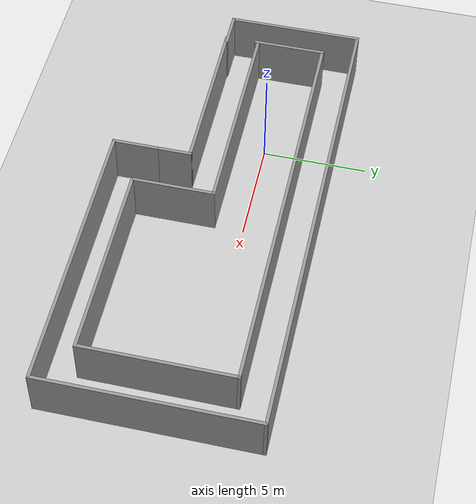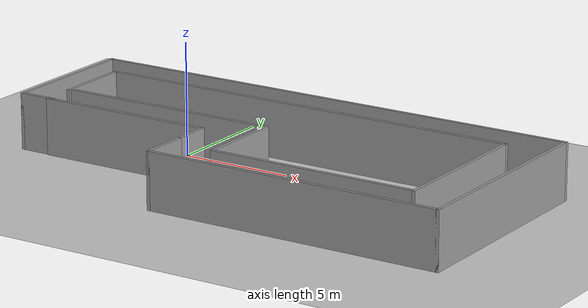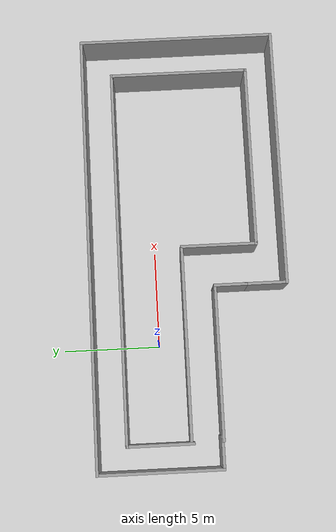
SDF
<?xml version="1.0" ?>
<sdf version="1.5">
  <world name="default">
    <!-- A global light source -->
    <include>
      <uri>model://sun</uri>
    </include>
    <!-- A ground plane -->
    <include>
      <uri>model://ground_plane</uri>
    </include>

<physics name='default_physics' default='0' type='ode'>
      <max_step_size>0.001</max_step_size>
      <real_time_factor>1</real_time_factor>
      <real_time_update_rate>1000</real_time_update_rate>
    </physics>

    <model name='corridor_world'>
    <pose frame=''>4.91551 -1.66993 0 0 -0 0</pose>
    <link name='Wall_0'>
      <collision name='Wall_0_Collision'>
        <geometry>
          <box>
            <size>10 0.15 2.5</size>
          </box>
        </geometry>
        <pose frame=''>0 0 1.25 0 -0 0</pose>
      </collision>
      <visual name='Wall_0_Visual'>
        <pose frame=''>0 0 1.25 0 -0 0</pose>
        <geometry>
          <box>
            <size>10 0.15 2.5</size>
          </box>
        </geometry>
        <material>
          <script>
            <uri>file://media/materials/scripts/gazebo.material</uri>
            <name>Gazebo/Grey</name>
          </script>
          <ambient>1 1 1 1</ambient>
        </material>
        <meta>
          <layer>0</layer>
        </meta>
      </visual>
      <pose frame=''>-4.89051 0.259932 0 0 -0 0</pose>
    </link>
    <link name='Wall_10'>
      <collision name='Wall_10_Collision'>
        <geometry>
          <box>
            <size>1.75 0.15 2.5</size>
          </box>
        </geometry>
        <pose frame=''>0 0 1.25 0 -0 0</pose>
      </collision>
      <visual name='Wall_10_Visual'>
        <pose frame=''>0 0 1.25 0 -0 0</pose>
        <geometry>
          <box>
            <size>1.75 0.15 2.5</size>
          </box>
        </geometry>
        <material>
          <script>
            <uri>file://media/materials/scripts/gazebo.material</uri>
            <name>Gazebo/Grey</name>
          </script>
          <ambient>1 1 1 1</ambient>
        </material>
        <meta>
          <layer>0</layer>
        </meta>
      </visual>
      <pose frame=''>-2.05 -2.15 0 0 -0 -1.5708</pose>
    </link>
    <link name='Wall_12'>
      <collision name='Wall_12_Collision'>
        <geometry>
          <box>
            <size>2.25 0.15 2.5</size>
          </box>
        </geometry>
        <pose frame=''>0 0 1.25 0 -0 0</pose>
      </collision>
      <visual name='Wall_12_Visual'>
        <pose frame=''>0 0 1.25 0 -0 0</pose>
        <geometry>
          <box>
            <size>2.25 0.15 2.5</size>
          </box>
        </geometry>
        <material>
          <script>
            <uri>file://media/materials/scripts/gazebo.material</uri>
            <name>Gazebo/Grey</name>
          </script>
          <ambient>1 1 1 1</ambient>
        </material>
        <meta>
          <layer>0</layer>
        </meta>
      </visual>
      <pose frame=''>-2.05 -4 0 0 -0 -1.5708</pose>
    </link>
    <link name='Wall_13'>
      <collision name='Wall_13_Collision'>
        <geometry>
          <box>
            <size>13.5 0.15 2.5</size>
          </box>
        </geometry>
        <pose frame=''>0 0 1.25 0 -0 0</pose>
      </collision>
      <visual name='Wall_13_Visual'>
        <pose frame=''>0 0 1.25 0 -0 0</pose>
        <geometry>
          <box>
            <size>13.5 0.15 2.5</size>
          </box>
        </geometry>
        <material>
          <script>
            <uri>file://media/materials/scripts/gazebo.material</uri>
            <name>Gazebo/Grey</name>
          </script>
          <ambient>1 1 1 1</ambient>
        </material>
        <meta>
          <layer>0</layer>
        </meta>
      </visual>
      <pose frame=''>4.625 -5.05 0 0 -0 0</pose>
    </link>
    <link name='Wall_14'>
      <collision name='Wall_14_Collision'>
        <geometry>
          <box>
            <size>10.25 0.15 2.5</size>
          </box>
        </geometry>
        <pose frame=''>0 0 1.25 0 -0 0</pose>
      </collision>
      <visual name='Wall_14_Visual'>
        <pose frame=''>0 0 1.25 0 -0 0</pose>
        <geometry>
          <box>
            <size>10.25 0.15 2.5</size>
          </box>
        </geometry>
        <material>
          <script>
            <uri>file://media/materials/scripts/gazebo.material</uri>
            <name>Gazebo/Grey</name>
          </script>
          <ambient>1 1 1 1</ambient>
        </material>
        <meta>
          <layer>0</layer>
        </meta>
      </visual>
      <pose frame=''>11.3 -0 0 0 -0 1.5708</pose>
    </link>
    <link name='Wall_15'>
      <collision name='Wall_15_Collision'>
        <geometry>
          <box>
            <size>22.75 0.15 2.5</size>
          </box>
        </geometry>
        <pose frame=''>0 0 1.25 0 -0 0</pose>
      </collision>
      <visual name='Wall_15_Visual'>
        <pose frame=''>0 0 1.25 0 -0 0</pose>
        <geometry>
          <box>
            <size>22.75 0.15 2.5</size>
          </box>
        </geometry>
        <material>
          <script>
            <uri>file://media/materials/scripts/gazebo.material</uri>
            <name>Gazebo/Grey</name>
          </script>
          <ambient>1 1 1 1</ambient>
        </material>
        <meta>
          <layer>0</layer>
        </meta>
      </visual>
      <pose frame=''>-0 5.05 0 0 -0 3.14159</pose>
    </link>
    <link name='Wall_16'>
      <collision name='Wall_16_Collision'>
        <geometry>
          <box>
            <size>6.5 0.15 2.5</size>
          </box>
        </geometry>
        <pose frame=''>0 0 1.25 0 -0 0</pose>
      </collision>
      <visual name='Wall_16_Visual'>
        <pose frame=''>0 0 1.25 0 -0 0</pose>
        <geometry>
          <box>
            <size>6.5 0.15 2.5</size>
          </box>
        </geometry>
        <material>
          <script>
            <uri>file://media/materials/scripts/gazebo.material</uri>
            <name>Gazebo/Grey</name>
          </script>
          <ambient>1 1 1 1</ambient>
        </material>
        <meta>
          <layer>0</layer>
        </meta>
      </visual>
      <pose frame=''>-11.3 1.875 0 0 -0 -1.5708</pose>
    </link>
    <link name='Wall_17'>
      <collision name='Wall_17_Collision'>
        <geometry>
          <box>
            <size>1.75 0.15 2.5</size>
          </box>
        </geometry>
        <pose frame=''>0 0 1.25 0 -0 0</pose>
      </collision>
      <visual name='Wall_17_Visual'>
        <pose frame=''>0 0 1.25 0 -0 0</pose>
        <geometry>
          <box>
            <size>1.75 0.15 2.5</size>
          </box>
        </geometry>
        <material>
          <script>
            <uri>file://media/materials/scripts/gazebo.material</uri>
            <name>Gazebo/Grey</name>
          </script>
          <ambient>1 1 1 1</ambient>
        </material>
        <meta>
          <layer>0</layer>
        </meta>
      </visual>
      <pose frame=''>-10.5 -1.3 0 0 -0 0</pose>
    </link>
    <link name='Wall_3'>
      <collision name='Wall_3_Collision'>
        <geometry>
          <box>
            <size>4 0.15 2.5</size>
          </box>
        </geometry>
        <pose frame=''>0 0 1.25 0 -0 0</pose>
      </collision>
      <visual name='Wall_3_Visual'>
        <pose frame=''>0 0 1.25 0 -0 0</pose>
        <geometry>
          <box>
            <size>4 0.15 2.5</size>
          </box>
        </geometry>
        <material>
          <script>
            <uri>file://media/materials/scripts/gazebo.material</uri>
            <name>Gazebo/Grey</name>
          </script>
          <ambient>1 1 1 1</ambient>
        </material>
        <meta>
          <layer>0</layer>
        </meta>
      </visual>
      <pose frame=''>0.034488 -1.66507 0 0 -0 -1.5708</pose>
    </link>
    <link name='Wall_4'>
      <collision name='Wall_4_Collision'>
        <geometry>
          <box>
            <size>9.5 0.15 2.5</size>
          </box>
        </geometry>
        <pose frame=''>0 0 1.25 0 -0 0</pose>
      </collision>
      <visual name='Wall_4_Visual'>
        <pose frame=''>0 0 1.25 0 -0 0</pose>
        <geometry>
          <box>
            <size>9.5 0.15 2.5</size>
          </box>
        </geometry>
        <material>
          <script>
            <uri>file://media/materials/scripts/gazebo.material</uri>
            <name>Gazebo/Grey</name>
          </script>
          <ambient>1 1 1 1</ambient>
        </material>
        <meta>
          <layer>0</layer>
        </meta>
      </visual>
      <pose frame=''>4.70949 -3.59007 0 0 -0 0</pose>
    </link>
    <link name='Wall_5'>
      <collision name='Wall_5_Collision'>
        <geometry>
          <box>
            <size>7.25 0.15 2.5</size>
          </box>
        </geometry>
        <pose frame=''>0 0 1.25 0 -0 0</pose>
      </collision>
      <visual name='Wall_5_Visual'>
        <pose frame=''>0 0 1.25 0 -0 0</pose>
        <geometry>
          <box>
            <size>7.25 0.15 2.5</size>
          </box>
        </geometry>
        <material>
          <script>
            <uri>file://media/materials/scripts/gazebo.material</uri>
            <name>Gazebo/Grey</name>
          </script>
          <ambient>1 1 1 1</ambient>
        </material>
        <meta>
          <layer>0</layer>
        </meta>
      </visual>
      <pose frame=''>9.38449 -0.040068 0 0 -0 1.5708</pose>
    </link>
    <link name='Wall_6'>
      <collision name='Wall_6_Collision'>
        <geometry>
          <box>
            <size>19.5 0.15 2.5</size>
          </box>
        </geometry>
        <pose frame=''>0 0 1.25 0 -0 0</pose>
      </collision>
      <visual name='Wall_6_Visual'>
        <pose frame=''>0 0 1.25 0 -0 0</pose>
        <geometry>
          <box>
            <size>19.5 0.15 2.5</size>
          </box>
        </geometry>
        <material>
          <script>
            <uri>file://media/materials/scripts/gazebo.material</uri>
            <name>Gazebo/Grey</name>
          </script>
          <ambient>1 1 1 1</ambient>
        </material>
        <meta>
          <layer>0</layer>
        </meta>
      </visual>
      <pose frame=''>-0.290512 3.50993 0 0 -0 3.14159</pose>
    </link>
    <link name='Wall_7'>
      <collision name='Wall_7_Collision'>
        <geometry>
          <box>
            <size>3.5 0.15 2.5</size>
          </box>
        </geometry>
        <pose frame=''>0 0 1.25 0 -0 0</pose>
      </collision>
      <visual name='Wall_7_Visual'>
        <pose frame=''>0 0 1.25 0 -0 0</pose>
        <geometry>
          <box>
            <size>3.5 0.15 2.5</size>
          </box>
        </geometry>
        <material>
          <script>
            <uri>file://media/materials/scripts/gazebo.material</uri>
            <name>Gazebo/Grey</name>
          </script>
          <ambient>1 1 1 1</ambient>
        </material>
        <meta>
          <layer>0</layer>
        </meta>
      </visual>
      <pose frame=''>-9.96551 1.83493 0 0 -0 -1.5708</pose>
    </link>
    <link name='Wall_9'>
      <collision name='Wall_9_Collision'>
        <geometry>
          <box>
            <size>8 0.15 2.5</size>
          </box>
        </geometry>
        <pose frame=''>0 0 1.25 0 -0 0</pose>
      </collision>
      <visual name='Wall_9_Visual'>
        <pose frame=''>0 0 1.25 0 -0 0</pose>
        <geometry>
          <box>
            <size>8 0.15 2.5</size>
          </box>
        </geometry>
        <material>
          <script>
            <uri>file://media/materials/scripts/gazebo.material</uri>
            <name>Gazebo/Grey</name>
          </script>
          <ambient>1 1 1 1</ambient>
        </material>
        <meta>
          <layer>0</layer>
        </meta>
      </visual>
      <pose frame=''>-5.975 -1.35 0 0 -0 0</pose>
    </link>
    <static>1</static>
  </model>

    </world>
</sdf>
